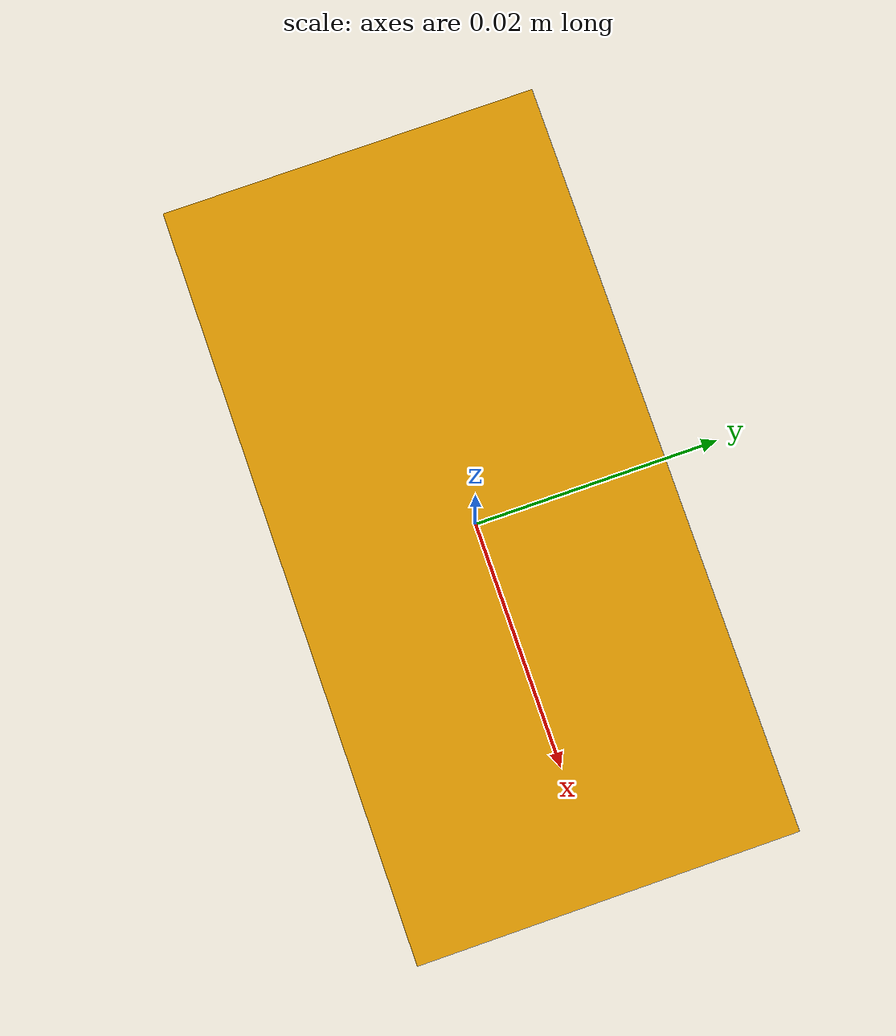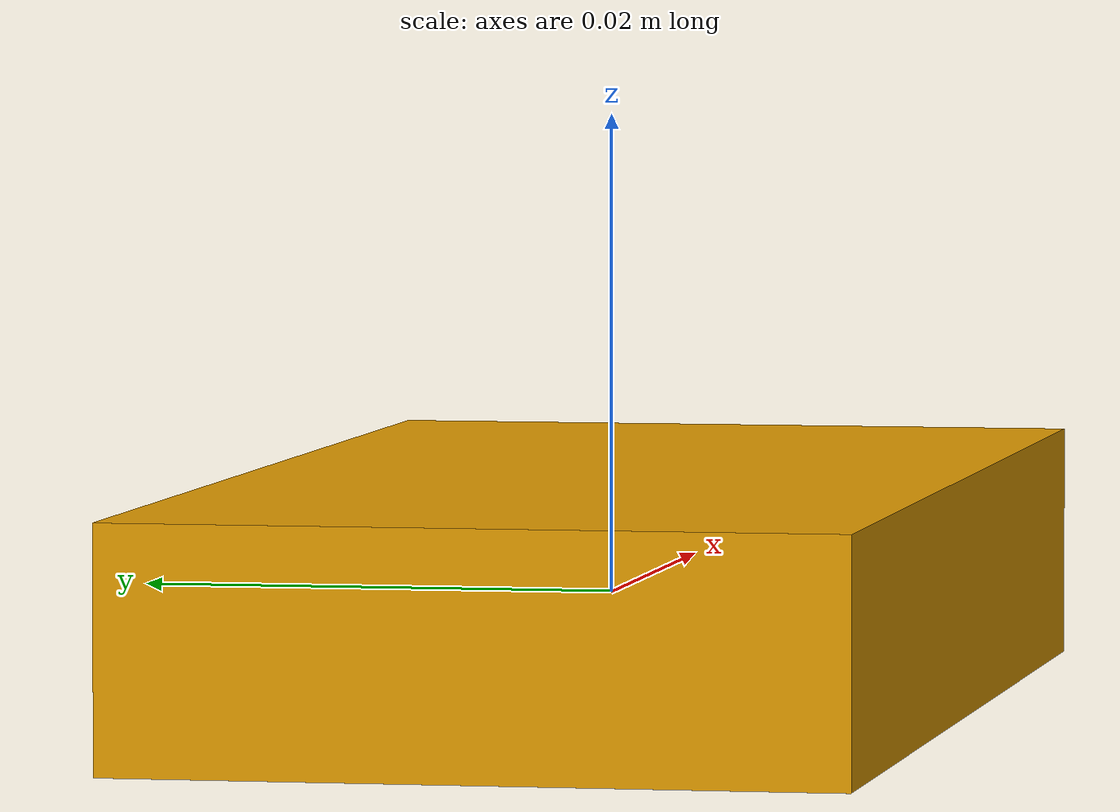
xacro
<?xml version="1.0"?>
<robot name="camera" xmlns:xacro="http://www.ros.org/wiki/xacro">

  <xacro:property name="Camera_size" value="0.06 0.03 0.01" />

  <!--camera_link-->
  <link name="camera_link">
  <static>true</static>
    <collision>
      <origin xyz="0 0 0" rpy="0 0 0"/>
      <geometry>
        <box size="${Camera_size}"/>
      </geometry>
    </collision>

    <visual>
      <origin xyz="0 0 0" rpy="0 0 0"/>
      <geometry>
        <box size="${Camera_size}"/>
      </geometry>
    </visual>

    <inertial>
      <mass value="0.001"/>
      <origin xyz="0 0 0" rpy="0 0 0"/>
      <inertia ixx="1" ixy="0" ixz="0" iyy="1" iyz="0" izz="1" />
    </inertial>
  </link>

  <joint name="camera_optical_joint" type="fixed">
    <origin xyz="0 0 0" rpy="0 0 0"/>
    <parent link="camera_link"/>
    <child link="camera_link_optical"/>
  </joint>

  <link name="camera_link_optical">
  </link>

  <gazebo>
      <static>true</static>
  </gazebo>
  <!--gazebo cam_image,actuator-->
    <gazebo reference="camera_link">
      <sensor type="camera" name="camera1">
        <update_rate>120.0</update_rate>
        <camera name="head">
          <horizontal_fov>1.3962634</horizontal_fov>
          <image>
            <width>1920</width>
            <height>1080</height>
            <format>R8G8B8</format>
          </image>
          <clip>
            <near>0.01</near>
            <far>100</far>
          </clip>
        </camera>
        <plugin name="camera_controller" filename="libgazebo_ros_camera.so">
          <alwaysOn>true</alwaysOn>
          <updateRate>0.0</updateRate>
          <cameraName>/camera1</cameraName>
          <imageTopicName>image_raw</imageTopicName>
          <cameraInfoTopicName>camera_info</cameraInfoTopicName>
          <frameName>camera_link_optical</frameName>
          <hackBaseline>0.0</hackBaseline>
          <distortionK1>0.0</distortionK1>
          <distortionK2>0.0</distortionK2>
          <distortionK3>0.0</distortionK3>
          <distortionT1>0.0</distortionT1>
          <distortionT2>0.0</distortionT2>
          <CxPrime>0</CxPrime>
          <Cx>0.0</Cx>
          <Cy>0.0</Cy>
          <focalLength>0.0</focalLength>
        </plugin>
      </sensor>
    </gazebo>

</robot>
